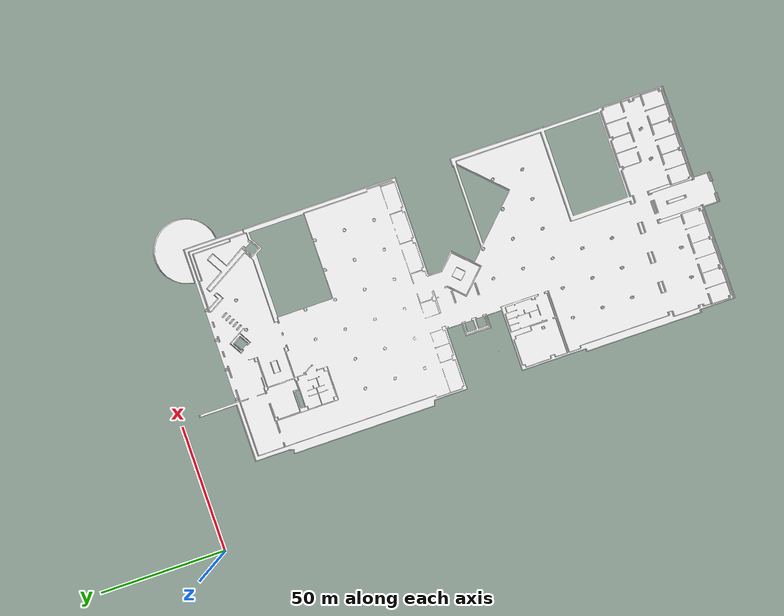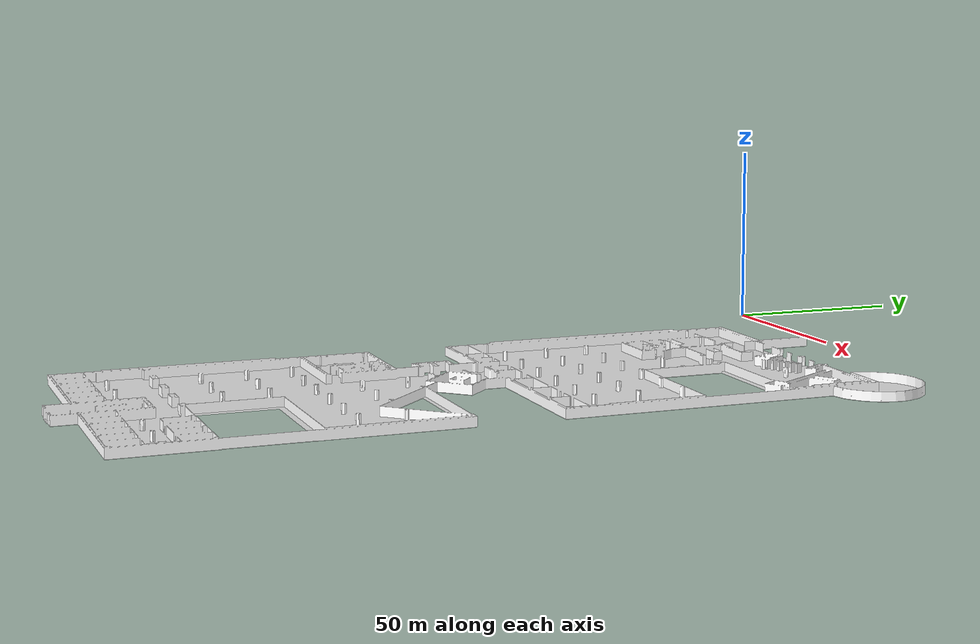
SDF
<?xml version='1.0' encoding='utf-8'?>
<sdf version="1.7">
  <model name="library_L1">
    <static>true</static>
    <link name="floor_1">
      <visual name="visual">
        <geometry>
          <mesh>
            <uri>model://library_L1/meshes/floor_1.obj</uri>
          </mesh>
        </geometry>
        <material>
          <diffuse>1.0 1.0 1.0</diffuse>
          <specular>0.1 0.1 0.1</specular>
          <pbr>
            <metal>
              <metalness>0.0</metalness>
              <albedo_map>model://library_L1/meshes/blue_linoleum.png</albedo_map>
            </metal>
          </pbr>
          <script>
            <uri>model://library_L1/meshes/</uri>
            <name>floor_1_Diffuse</name>
          </script>
        </material>
      </visual>
      <collision name="collision">
        <geometry>
          <mesh>
            <uri>model://library_L1/meshes/floor_1.obj</uri>
          </mesh>
        </geometry>
        <surface>
          <contact>
            <collide_bitmask>0x01</collide_bitmask>
          </contact>
        </surface>
      </collision>
    </link>
    <link name="wall_1">
      <visual name="wall_1">
        <geometry>
          <mesh>
            <uri>model://library_L1/meshes/wall_1.obj</uri>
          </mesh>
        </geometry>
        <transparency>0.0</transparency>
        <material>
          <diffuse>1.0 1.0 1.0</diffuse>
          <specular>0.1 0.1 0.1</specular>
          <pbr>
            <metal>
              <metalness>0.0</metalness>
              <albedo_map>model://library_L1/meshes/default.png</albedo_map>
            </metal>
          </pbr>
          <script>
            <uri>model://library_L1/meshes/</uri>
            <name>wall_1_Diffuse</name>
          </script>
        </material>
      </visual>
      <collision name="collision">
        <geometry>
          <mesh>
            <uri>model://library_L1/meshes/wall_1.obj</uri>
          </mesh>
        </geometry>
        <surface>
          <contact>
            <collide_bitmask>0x01</collide_bitmask>
          </contact>
        </surface>
      </collision>
      <pose>26.71995118053053 -221.444368893332 0 0 0 0</pose>
    </link>
    <link name="wall_2">
      <visual name="wall_2">
        <geometry>
          <mesh>
            <uri>model://library_L1/meshes/wall_2.obj</uri>
          </mesh>
        </geometry>
        <transparency>0.0</transparency>
        <material>
          <diffuse>1.0 1.0 1.0</diffuse>
          <specular>0.1 0.1 0.1</specular>
          <pbr>
            <metal>
              <metalness>0.0</metalness>
              <albedo_map>model://library_L1/meshes/default.png</albedo_map>
            </metal>
          </pbr>
          <script>
            <uri>model://library_L1/meshes/</uri>
            <name>wall_2_Diffuse</name>
          </script>
        </material>
      </visual>
      <collision name="collision">
        <geometry>
          <mesh>
            <uri>model://library_L1/meshes/wall_2.obj</uri>
          </mesh>
        </geometry>
        <surface>
          <contact>
            <collide_bitmask>0x01</collide_bitmask>
          </contact>
        </surface>
      </collision>
      <pose>100.43019468002686 -35.49613127499813 0 0 0 0</pose>
    </link>
  </model>
</sdf>
